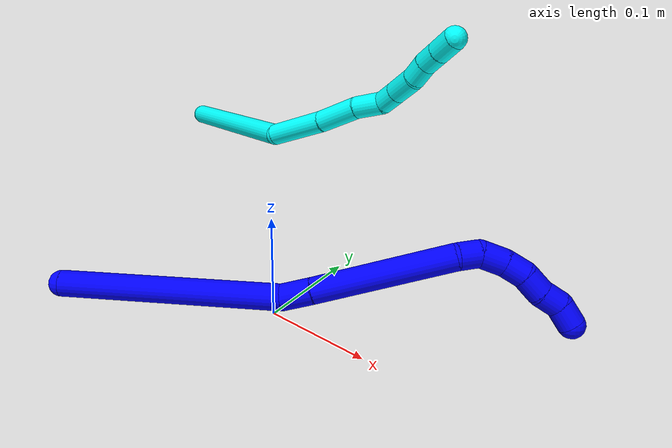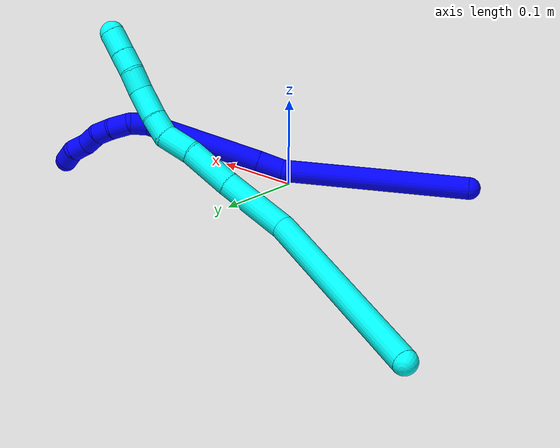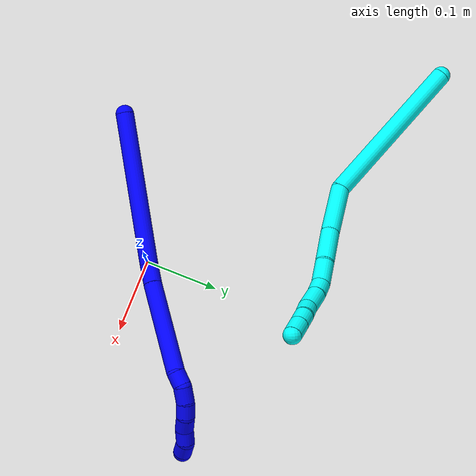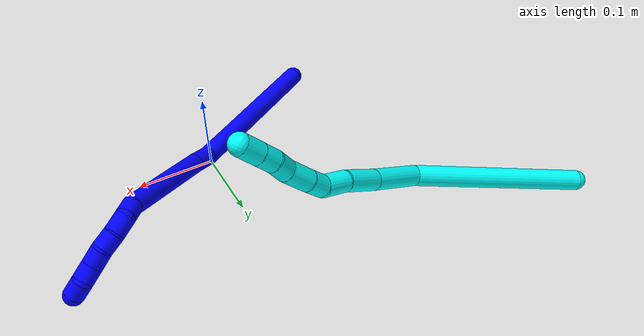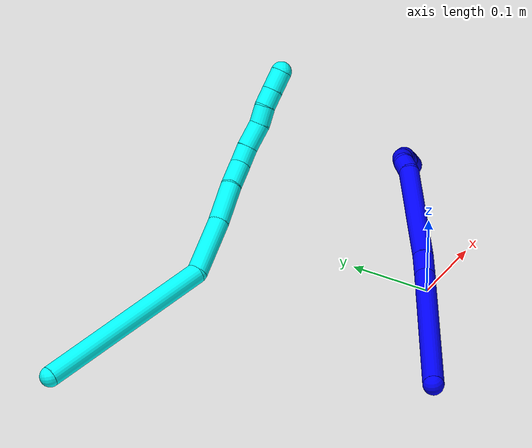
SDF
<sdf version="1.7">
 <world name="default">
  <model name="1">
   <static>0</static>
   <link name="1">
    <collision name="collision-cylinder-e_1_1_4">
     <pose>0.093026 0.051298 0.000636 -1.55841 1.06681 -1.056</pose>
     <geometry><cylinder><radius>0.0125</radius><length>0.212468</length></cylinder></geometry>
     <surface>
      <friction><ode><mu>1.16</mu><mu2>1.16</mu2><slip1>0</slip1><slip2>0</slip2></ode></friction>
      <contact><ode><kp>1e+06</kp><kd>1</kd><max_vel>0</max_vel><min_depth>0.001</min_depth></ode></contact>
     </surface>
    </collision>
    <visual name="visual-cylinder-e_1_1_4">
     <pose>0.093026 0.051298 0.000636 -1.55841 1.06681 -1.056</pose>
     <geometry><cylinder><radius>0.0125</radius><length>0.212468</length></cylinder></geometry>
     <material><ambient>0 0 1 1</ambient></material>
    </visual>
    <collision name="collision-cylinder-e_2_4_5">
     <pose>0.198539 0.109345 0.005745 -0.985389 0.995567 -0.567726</pose>
     <geometry><cylinder><radius>0.0125</radius><length>0.029766</length></cylinder></geometry>
     <surface>
      <friction><ode><mu>1.16</mu><mu2>1.16</mu2><slip1>0</slip1><slip2>0</slip2></ode></friction>
      <contact><ode><kp>1e+06</kp><kd>1</kd><max_vel>0</max_vel><min_depth>0.001</min_depth></ode></contact>
     </surface>
    </collision>
    <visual name="visual-cylinder-e_2_4_5">
     <pose>0.198539 0.109345 0.005745 -0.985389 0.995567 -0.567726</pose>
     <geometry><cylinder><radius>0.0125</radius><length>0.029766</length></cylinder></geometry>
     <material><ambient>0 0 1 1</ambient></material>
    </visual>
    <collision name="collision-cylinder-e_3_5_6">
     <pose>0.264823 0.149482 0.029846 -1.03937 0.946814 -0.570201</pose>
     <geometry><cylinder><radius>0.0125</radius><length>0.132576</length></cylinder></geometry>
     <surface>
      <friction><ode><mu>1.16</mu><mu2>1.16</mu2><slip1>0</slip1><slip2>0</slip2></ode></friction>
      <contact><ode><kp>1e+06</kp><kd>1</kd><max_vel>0</max_vel><min_depth>0.001</min_depth></ode></contact>
     </surface>
    </collision>
    <visual name="visual-cylinder-e_3_5_6">
     <pose>0.264823 0.149482 0.029846 -1.03937 0.946814 -0.570201</pose>
     <geometry><cylinder><radius>0.0125</radius><length>0.132576</length></cylinder></geometry>
     <material><ambient>0 0 1 1</ambient></material>
    </visual>
    <collision name="collision-cylinder-e_4_6_7">
     <pose>0.325707 0.189912 0.050444 -1.43371 0.783941 -0.691554</pose>
     <geometry><cylinder><radius>0.0125</radius><length>0.020074</length></cylinder></geometry>
     <surface>
      <friction><ode><mu>1.16</mu><mu2>1.16</mu2><slip1>0</slip1><slip2>0</slip2></ode></friction>
      <contact><ode><kp>1e+06</kp><kd>1</kd><max_vel>0</max_vel><min_depth>0.001</min_depth></ode></contact>
     </surface>
    </collision>
    <visual name="visual-cylinder-e_4_6_7">
     <pose>0.325707 0.189912 0.050444 -1.43371 0.783941 -0.691554</pose>
     <geometry><cylinder><radius>0.0125</radius><length>0.020074</length></cylinder></geometry>
     <material><ambient>0 0 1 1</ambient></material>
    </visual>
    <collision name="collision-cylinder-e_5_7_8">
     <pose>0.342015 0.203012 0.047442 -2.15122 0.904744 -1.46547</pose>
     <geometry><cylinder><radius>0.0125</radius><length>0.023455</length></cylinder></geometry>
     <surface>
      <friction><ode><mu>1.16</mu><mu2>1.16</mu2><slip1>0</slip1><slip2>0</slip2></ode></friction>
      <contact><ode><kp>1e+06</kp><kd>1</kd><max_vel>0</max_vel><min_depth>0.001</min_depth></ode></contact>
     </surface>
    </collision>
    <visual name="visual-cylinder-e_5_7_8">
     <pose>0.342015 0.203012 0.047442 -2.15122 0.904744 -1.46547</pose>
     <geometry><cylinder><radius>0.0125</radius><length>0.023455</length></cylinder></geometry>
     <material><ambient>0 0 1 1</ambient></material>
    </visual>
    <collision name="collision-cylinder-e_6_8_9">
     <pose>0.359433 0.21263 0.038614 -2.50909 0.937452 -1.99413</pose>
     <geometry><cylinder><radius>0.0125</radius><length>0.02034</length></cylinder></geometry>
     <surface>
      <friction><ode><mu>1.16</mu><mu2>1.16</mu2><slip1>0</slip1><slip2>0</slip2></ode></friction>
      <contact><ode><kp>1e+06</kp><kd>1</kd><max_vel>0</max_vel><min_depth>0.001</min_depth></ode></contact>
     </surface>
    </collision>
    <visual name="visual-cylinder-e_6_8_9">
     <pose>0.359433 0.21263 0.038614 -2.50909 0.937452 -1.99413</pose>
     <geometry><cylinder><radius>0.0125</radius><length>0.02034</length></cylinder></geometry>
     <material><ambient>0 0 1 1</ambient></material>
    </visual>
    <collision name="collision-cylinder-e_7_9_10">
     <pose>0.374568 0.218777 0.026162 -2.81322 0.712842 -2.30424</pose>
     <geometry><cylinder><radius>0.0125</radius><length>0.021217</length></cylinder></geometry>
     <surface>
      <friction><ode><mu>1.16</mu><mu2>1.16</mu2><slip1>0</slip1><slip2>0</slip2></ode></friction>
      <contact><ode><kp>1e+06</kp><kd>1</kd><max_vel>0</max_vel><min_depth>0.001</min_depth></ode></contact>
     </surface>
    </collision>
    <visual name="visual-cylinder-e_7_9_10">
     <pose>0.374568 0.218777 0.026162 -2.81322 0.712842 -2.30424</pose>
     <geometry><cylinder><radius>0.0125</radius><length>0.021217</length></cylinder></geometry>
     <material><ambient>0 0 1 1</ambient></material>
    </visual>
    <collision name="collision-cylinder-e_8_10_11">
     <pose>0.388923 0.225504 0.013283 -2.47703 0.835272 -1.81967</pose>
     <geometry><cylinder><radius>0.0125</radius><length>0.020004</length></cylinder></geometry>
     <surface>
      <friction><ode><mu>1.16</mu><mu2>1.16</mu2><slip1>0</slip1><slip2>0</slip2></ode></friction>
      <contact><ode><kp>1e+06</kp><kd>1</kd><max_vel>0</max_vel><min_depth>0.001</min_depth></ode></contact>
     </surface>
    </collision>
    <visual name="visual-cylinder-e_8_10_11">
     <pose>0.388923 0.225504 0.013283 -2.47703 0.835272 -1.81967</pose>
     <geometry><cylinder><radius>0.0125</radius><length>0.020004</length></cylinder></geometry>
     <material><ambient>0 0 1 1</ambient></material>
    </visual>
    <collision name="collision-cylinder-e_9_11_2">
     <pose>0.402218 0.230643 -9e-05 -3.0186 0.624836 -2.76486</pose>
     <geometry><cylinder><radius>0.0125</radius><length>0.0201</length></cylinder></geometry>
     <surface>
      <friction><ode><mu>1.16</mu><mu2>1.16</mu2><slip1>0</slip1><slip2>0</slip2></ode></friction>
      <contact><ode><kp>1e+06</kp><kd>1</kd><max_vel>0</max_vel><min_depth>0.001</min_depth></ode></contact>
     </surface>
    </collision>
    <visual name="visual-cylinder-e_9_11_2">
     <pose>0.402218 0.230643 -9e-05 -3.0186 0.624836 -2.76486</pose>
     <geometry><cylinder><radius>0.0125</radius><length>0.0201</length></cylinder></geometry>
     <material><ambient>0 0 1 1</ambient></material>
    </visual>
    <collision name="collision-sphere-2">
     <pose>0.408097 0.231642 -0.008179 0 -0 0</pose>
     <geometry><sphere><radius>0.0125</radius></sphere></geometry>
     <surface>
      <friction><ode><mu>1.16</mu><mu2>1.16</mu2><slip1>0</slip1><slip2>0</slip2></ode></friction>
      <contact><ode><kp>1e+06</kp><kd>1</kd><max_vel>0</max_vel><min_depth>0.001</min_depth></ode></contact>
     </surface>
    </collision>
    <visual name="visual-sphere-2">
     <pose>0.408097 0.231642 -0.008179 0 -0 0</pose>
     <geometry><sphere><radius>0.0125</radius></sphere></geometry>
     <material><ambient>0 0 1 1</ambient></material>
    </visual>
    <collision name="collision-sphere-11">
     <pose>0.396339 0.229643 0.008 0 -0 0</pose>
     <geometry><sphere><radius>0.0125</radius></sphere></geometry>
     <surface>
      <friction><ode><mu>1.16</mu><mu2>1.16</mu2><slip1>0</slip1><slip2>0</slip2></ode></friction>
      <contact><ode><kp>1e+06</kp><kd>1</kd><max_vel>0</max_vel><min_depth>0.001</min_depth></ode></contact>
     </surface>
    </collision>
    <visual name="visual-sphere-11">
     <pose>0.396339 0.229643 0.008 0 -0 0</pose>
     <geometry><sphere><radius>0.0125</radius></sphere></geometry>
     <material><ambient>0 0 1 1</ambient></material>
    </visual>
    <collision name="collision-sphere-10">
     <pose>0.381506 0.221365 0.018566 0 -0 0</pose>
     <geometry><sphere><radius>0.0125</radius></sphere></geometry>
     <surface>
      <friction><ode><mu>1.16</mu><mu2>1.16</mu2><slip1>0</slip1><slip2>0</slip2></ode></friction>
      <contact><ode><kp>1e+06</kp><kd>1</kd><max_vel>0</max_vel><min_depth>0.001</min_depth></ode></contact>
     </surface>
    </collision>
    <visual name="visual-sphere-10">
     <pose>0.381506 0.221365 0.018566 0 -0 0</pose>
     <geometry><sphere><radius>0.0125</radius></sphere></geometry>
     <material><ambient>0 0 1 1</ambient></material>
    </visual>
    <collision name="collision-sphere-9">
     <pose>0.36763 0.216188 0.033759 0 -0 0</pose>
     <geometry><sphere><radius>0.0125</radius></sphere></geometry>
     <surface>
      <friction><ode><mu>1.16</mu><mu2>1.16</mu2><slip1>0</slip1><slip2>0</slip2></ode></friction>
      <contact><ode><kp>1e+06</kp><kd>1</kd><max_vel>0</max_vel><min_depth>0.001</min_depth></ode></contact>
     </surface>
    </collision>
    <visual name="visual-sphere-9">
     <pose>0.36763 0.216188 0.033759 0 -0 0</pose>
     <geometry><sphere><radius>0.0125</radius></sphere></geometry>
     <material><ambient>0 0 1 1</ambient></material>
    </visual>
    <collision name="collision-sphere-4">
     <pose>0.186051 0.102597 0.001271 0 -0 0</pose>
     <geometry><sphere><radius>0.0125</radius></sphere></geometry>
     <surface>
      <friction><ode><mu>1.16</mu><mu2>1.16</mu2><slip1>0</slip1><slip2>0</slip2></ode></friction>
      <contact><ode><kp>1e+06</kp><kd>1</kd><max_vel>0</max_vel><min_depth>0.001</min_depth></ode></contact>
     </surface>
    </collision>
    <visual name="visual-sphere-4">
     <pose>0.186051 0.102597 0.001271 0 -0 0</pose>
     <geometry><sphere><radius>0.0125</radius></sphere></geometry>
     <material><ambient>0 0 1 1</ambient></material>
    </visual>
    <collision name="collision-sphere-1">
     <geometry><sphere><radius>0.0125</radius></sphere></geometry>
     <surface>
      <friction><ode><mu>1.16</mu><mu2>1.16</mu2><slip1>0</slip1><slip2>0</slip2></ode></friction>
      <contact><ode><kp>1e+06</kp><kd>1</kd><max_vel>0</max_vel><min_depth>0.001</min_depth></ode></contact>
     </surface>
    </collision>
    <visual name="visual-sphere-1">
     <geometry><sphere><radius>0.0125</radius></sphere></geometry>
     <material><ambient>0 0 1 1</ambient></material>
    </visual>
    <collision name="collision-sphere-8">
     <pose>0.351236 0.209072 0.043468 0 -0 0</pose>
     <geometry><sphere><radius>0.0125</radius></sphere></geometry>
     <surface>
      <friction><ode><mu>1.16</mu><mu2>1.16</mu2><slip1>0</slip1><slip2>0</slip2></ode></friction>
      <contact><ode><kp>1e+06</kp><kd>1</kd><max_vel>0</max_vel><min_depth>0.001</min_depth></ode></contact>
     </surface>
    </collision>
    <visual name="visual-sphere-8">
     <pose>0.351236 0.209072 0.043468 0 -0 0</pose>
     <geometry><sphere><radius>0.0125</radius></sphere></geometry>
     <material><ambient>0 0 1 1</ambient></material>
    </visual>
    <collision name="collision-sphere-5">
     <pose>0.211027 0.116094 0.010219 0 -0 0</pose>
     <geometry><sphere><radius>0.0125</radius></sphere></geometry>
     <surface>
      <friction><ode><mu>1.16</mu><mu2>1.16</mu2><slip1>0</slip1><slip2>0</slip2></ode></friction>
      <contact><ode><kp>1e+06</kp><kd>1</kd><max_vel>0</max_vel><min_depth>0.001</min_depth></ode></contact>
     </surface>
    </collision>
    <visual name="visual-sphere-5">
     <pose>0.211027 0.116094 0.010219 0 -0 0</pose>
     <geometry><sphere><radius>0.0125</radius></sphere></geometry>
     <material><ambient>0 0 1 1</ambient></material>
    </visual>
    <collision name="collision-sphere-6">
     <pose>0.31862 0.182871 0.049473 0 -0 0</pose>
     <geometry><sphere><radius>0.0125</radius></sphere></geometry>
     <surface>
      <friction><ode><mu>1.16</mu><mu2>1.16</mu2><slip1>0</slip1><slip2>0</slip2></ode></friction>
      <contact><ode><kp>1e+06</kp><kd>1</kd><max_vel>0</max_vel><min_depth>0.001</min_depth></ode></contact>
     </surface>
    </collision>
    <visual name="visual-sphere-6">
     <pose>0.31862 0.182871 0.049473 0 -0 0</pose>
     <geometry><sphere><radius>0.0125</radius></sphere></geometry>
     <material><ambient>0 0 1 1</ambient></material>
    </visual>
    <collision name="collision-sphere-7">
     <pose>0.332794 0.196953 0.051416 0 -0 0</pose>
     <geometry><sphere><radius>0.0125</radius></sphere></geometry>
     <surface>
      <friction><ode><mu>1.16</mu><mu2>1.16</mu2><slip1>0</slip1><slip2>0</slip2></ode></friction>
      <contact><ode><kp>1e+06</kp><kd>1</kd><max_vel>0</max_vel><min_depth>0.001</min_depth></ode></contact>
     </surface>
    </collision>
    <visual name="visual-sphere-7">
     <pose>0.332794 0.196953 0.051416 0 -0 0</pose>
     <geometry><sphere><radius>0.0125</radius></sphere></geometry>
     <material><ambient>0 0 1 1</ambient></material>
    </visual>
    <inertial>
     <pose>0.212933 0.121319 0.015985 0 -0 0</pose>
     <mass>0.5</mass>
     <inertia>
      <ixx>-8.6e-05</ixx>
      <ixy>0</ixy>
      <ixz>0</ixz>
      <iyy>0.0004</iyy>
      <iyz>0</iyz>
      <izz>-0.001375</izz>
     </inertia>
    </inertial>
   </link>
   <pose>-0.176869 -0.104028 0.01149 -0.129202 -0.092745 0.042245</pose>
  </model>
  <model name="3">
   <static>0</static>
   <link name="3">
    <collision name="collision-cylinder-e_1_1_4">
     <pose>0.071218 0.020789 -0.082625 -2.8951 0.696247 -2.48371</pose>
     <geometry><cylinder><radius>0.0125</radius><length>0.222091</length></cylinder></geometry>
     <surface>
      <friction><ode><mu>1.16</mu><mu2>1.16</mu2><slip1>0</slip1><slip2>0</slip2></ode></friction>
      <contact><ode><kp>1e+06</kp><kd>1</kd><max_vel>0</max_vel><min_depth>0.001</min_depth></ode></contact>
     </surface>
    </collision>
    <visual name="visual-cylinder-e_1_1_4">
     <pose>0.071218 0.020789 -0.082625 -2.8951 0.696247 -2.48371</pose>
     <geometry><cylinder><radius>0.0125</radius><length>0.222091</length></cylinder></geometry>
     <material><ambient>0.003922 1 0.996078 1</ambient></material>
    </visual>
    <collision name="collision-cylinder-e_2_4_5">
     <pose>0.175692 0.040775 -0.179192 3.08401 1.17322 3.05499</pose>
     <geometry><cylinder><radius>0.0125</radius><length>0.072137</length></cylinder></geometry>
     <surface>
      <friction><ode><mu>1.16</mu><mu2>1.16</mu2><slip1>0</slip1><slip2>0</slip2></ode></friction>
      <contact><ode><kp>1e+06</kp><kd>1</kd><max_vel>0</max_vel><min_depth>0.001</min_depth></ode></contact>
     </surface>
    </collision>
    <visual name="visual-cylinder-e_2_4_5">
     <pose>0.175692 0.040775 -0.179192 3.08401 1.17322 3.05499</pose>
     <geometry><cylinder><radius>0.0125</radius><length>0.072137</length></cylinder></geometry>
     <material><ambient>0.003922 1 0.996078 1</ambient></material>
    </visual>
    <collision name="collision-cylinder-e_3_5_6">
     <pose>0.232126 0.037408 -0.201939 2.85831 1.19405 2.72805</pose>
     <geometry><cylinder><radius>0.0125</radius><length>0.049855</length></cylinder></geometry>
     <surface>
      <friction><ode><mu>1.16</mu><mu2>1.16</mu2><slip1>0</slip1><slip2>0</slip2></ode></friction>
      <contact><ode><kp>1e+06</kp><kd>1</kd><max_vel>0</max_vel><min_depth>0.001</min_depth></ode></contact>
     </surface>
    </collision>
    <visual name="visual-cylinder-e_3_5_6">
     <pose>0.232126 0.037408 -0.201939 2.85831 1.19405 2.72805</pose>
     <geometry><cylinder><radius>0.0125</radius><length>0.049855</length></cylinder></geometry>
     <material><ambient>0.003922 1 0.996078 1</ambient></material>
    </visual>
    <collision name="collision-cylinder-e_4_6_7">
     <pose>0.270798 0.035991 -0.216471 -2.9439 1.21032 -2.85681</pose>
     <geometry><cylinder><radius>0.0125</radius><length>0.033114</length></cylinder></geometry>
     <surface>
      <friction><ode><mu>1.16</mu><mu2>1.16</mu2><slip1>0</slip1><slip2>0</slip2></ode></friction>
      <contact><ode><kp>1e+06</kp><kd>1</kd><max_vel>0</max_vel><min_depth>0.001</min_depth></ode></contact>
     </surface>
    </collision>
    <visual name="visual-cylinder-e_4_6_7">
     <pose>0.270798 0.035991 -0.216471 -2.9439 1.21032 -2.85681</pose>
     <geometry><cylinder><radius>0.0125</radius><length>0.033114</length></cylinder></geometry>
     <material><ambient>0.003922 1 0.996078 1</ambient></material>
    </visual>
    <collision name="collision-cylinder-e_5_7_8">
     <pose>0.295534 0.033264 -0.227748 2.53223 0.938606 2.03138</pose>
     <geometry><cylinder><radius>0.0125</radius><length>0.022913</length></cylinder></geometry>
     <surface>
      <friction><ode><mu>1.16</mu><mu2>1.16</mu2><slip1>0</slip1><slip2>0</slip2></ode></friction>
      <contact><ode><kp>1e+06</kp><kd>1</kd><max_vel>0</max_vel><min_depth>0.001</min_depth></ode></contact>
     </surface>
    </collision>
    <visual name="visual-cylinder-e_5_7_8">
     <pose>0.295534 0.033264 -0.227748 2.53223 0.938606 2.03138</pose>
     <geometry><cylinder><radius>0.0125</radius><length>0.022913</length></cylinder></geometry>
     <material><ambient>0.003922 1 0.996078 1</ambient></material>
    </visual>
    <collision name="collision-cylinder-e_6_8_9">
     <pose>0.316499 0.024297 -0.242313 2.62731 0.847409 2.08588</pose>
     <geometry><cylinder><radius>0.0125</radius><length>0.031279</length></cylinder></geometry>
     <surface>
      <friction><ode><mu>1.16</mu><mu2>1.16</mu2><slip1>0</slip1><slip2>0</slip2></ode></friction>
      <contact><ode><kp>1e+06</kp><kd>1</kd><max_vel>0</max_vel><min_depth>0.001</min_depth></ode></contact>
     </surface>
    </collision>
    <visual name="visual-cylinder-e_6_8_9">
     <pose>0.316499 0.024297 -0.242313 2.62731 0.847409 2.08588</pose>
     <geometry><cylinder><radius>0.0125</radius><length>0.031279</length></cylinder></geometry>
     <material><ambient>0.003922 1 0.996078 1</ambient></material>
    </visual>
    <collision name="collision-cylinder-e_7_9_10">
     <pose>0.336518 0.013346 -0.256182 2.26296 0.828523 1.50434</pose>
     <geometry><cylinder><radius>0.0125</radius><length>0.022517</length></cylinder></geometry>
     <surface>
      <friction><ode><mu>1.16</mu><mu2>1.16</mu2><slip1>0</slip1><slip2>0</slip2></ode></friction>
      <contact><ode><kp>1e+06</kp><kd>1</kd><max_vel>0</max_vel><min_depth>0.001</min_depth></ode></contact>
     </surface>
    </collision>
    <visual name="visual-cylinder-e_7_9_10">
     <pose>0.336518 0.013346 -0.256182 2.26296 0.828523 1.50434</pose>
     <geometry><cylinder><radius>0.0125</radius><length>0.022517</length></cylinder></geometry>
     <material><ambient>0.003922 1 0.996078 1</ambient></material>
    </visual>
    <collision name="collision-cylinder-e_8_10_11">
     <pose>0.352809 0.00367 -0.266694 2.54787 0.864352 1.97041</pose>
     <geometry><cylinder><radius>0.0125</radius><length>0.021018</length></cylinder></geometry>
     <surface>
      <friction><ode><mu>1.16</mu><mu2>1.16</mu2><slip1>0</slip1><slip2>0</slip2></ode></friction>
      <contact><ode><kp>1e+06</kp><kd>1</kd><max_vel>0</max_vel><min_depth>0.001</min_depth></ode></contact>
     </surface>
    </collision>
    <visual name="visual-cylinder-e_8_10_11">
     <pose>0.352809 0.00367 -0.266694 2.54787 0.864352 1.97041</pose>
     <geometry><cylinder><radius>0.0125</radius><length>0.021018</length></cylinder></geometry>
     <material><ambient>0.003922 1 0.996078 1</ambient></material>
    </visual>
    <collision name="collision-cylinder-e_9_11_2">
     <pose>0.370297 -0.004723 -0.279139 2.54857 0.859084 1.96517</pose>
     <geometry><cylinder><radius>0.0125</radius><length>0.025076</length></cylinder></geometry>
     <surface>
      <friction><ode><mu>1.16</mu><mu2>1.16</mu2><slip1>0</slip1><slip2>0</slip2></ode></friction>
      <contact><ode><kp>1e+06</kp><kd>1</kd><max_vel>0</max_vel><min_depth>0.001</min_depth></ode></contact>
     </surface>
    </collision>
    <visual name="visual-cylinder-e_9_11_2">
     <pose>0.370297 -0.004723 -0.279139 2.54857 0.859084 1.96517</pose>
     <geometry><cylinder><radius>0.0125</radius><length>0.025076</length></cylinder></geometry>
     <material><ambient>0.003922 1 0.996078 1</ambient></material>
    </visual>
    <collision name="collision-sphere-2">
     <pose>0.379792 -0.0093 -0.28593 0 -0 0</pose>
     <geometry><sphere><radius>0.0125</radius></sphere></geometry>
     <surface>
      <friction><ode><mu>1.16</mu><mu2>1.16</mu2><slip1>0</slip1><slip2>0</slip2></ode></friction>
      <contact><ode><kp>1e+06</kp><kd>1</kd><max_vel>0</max_vel><min_depth>0.001</min_depth></ode></contact>
     </surface>
    </collision>
    <visual name="visual-sphere-2">
     <pose>0.379792 -0.0093 -0.28593 0 -0 0</pose>
     <geometry><sphere><radius>0.0125</radius></sphere></geometry>
     <material><ambient>0.003922 1 0.996078 1</ambient></material>
    </visual>
    <collision name="collision-sphere-11">
     <pose>0.360803 -0.000146 -0.272348 0 -0 0</pose>
     <geometry><sphere><radius>0.0125</radius></sphere></geometry>
     <surface>
      <friction><ode><mu>1.16</mu><mu2>1.16</mu2><slip1>0</slip1><slip2>0</slip2></ode></friction>
      <contact><ode><kp>1e+06</kp><kd>1</kd><max_vel>0</max_vel><min_depth>0.001</min_depth></ode></contact>
     </surface>
    </collision>
    <visual name="visual-sphere-11">
     <pose>0.360803 -0.000146 -0.272348 0 -0 0</pose>
     <geometry><sphere><radius>0.0125</radius></sphere></geometry>
     <material><ambient>0.003922 1 0.996078 1</ambient></material>
    </visual>
    <collision name="collision-sphere-10">
     <pose>0.344815 0.007487 -0.261039 0 -0 0</pose>
     <geometry><sphere><radius>0.0125</radius></sphere></geometry>
     <surface>
      <friction><ode><mu>1.16</mu><mu2>1.16</mu2><slip1>0</slip1><slip2>0</slip2></ode></friction>
      <contact><ode><kp>1e+06</kp><kd>1</kd><max_vel>0</max_vel><min_depth>0.001</min_depth></ode></contact>
     </surface>
    </collision>
    <visual name="visual-sphere-10">
     <pose>0.344815 0.007487 -0.261039 0 -0 0</pose>
     <geometry><sphere><radius>0.0125</radius></sphere></geometry>
     <material><ambient>0.003922 1 0.996078 1</ambient></material>
    </visual>
    <collision name="collision-sphere-9">
     <pose>0.328221 0.019204 -0.251326 0 -0 0</pose>
     <geometry><sphere><radius>0.0125</radius></sphere></geometry>
     <surface>
      <friction><ode><mu>1.16</mu><mu2>1.16</mu2><slip1>0</slip1><slip2>0</slip2></ode></friction>
      <contact><ode><kp>1e+06</kp><kd>1</kd><max_vel>0</max_vel><min_depth>0.001</min_depth></ode></contact>
     </surface>
    </collision>
    <visual name="visual-sphere-9">
     <pose>0.328221 0.019204 -0.251326 0 -0 0</pose>
     <geometry><sphere><radius>0.0125</radius></sphere></geometry>
     <material><ambient>0.003922 1 0.996078 1</ambient></material>
    </visual>
    <collision name="collision-sphere-4">
     <pose>0.142437 0.041578 -0.16525 0 -0 0</pose>
     <geometry><sphere><radius>0.0125</radius></sphere></geometry>
     <surface>
      <friction><ode><mu>1.16</mu><mu2>1.16</mu2><slip1>0</slip1><slip2>0</slip2></ode></friction>
      <contact><ode><kp>1e+06</kp><kd>1</kd><max_vel>0</max_vel><min_depth>0.001</min_depth></ode></contact>
     </surface>
    </collision>
    <visual name="visual-sphere-4">
     <pose>0.142437 0.041578 -0.16525 0 -0 0</pose>
     <geometry><sphere><radius>0.0125</radius></sphere></geometry>
     <material><ambient>0.003922 1 0.996078 1</ambient></material>
    </visual>
    <collision name="collision-sphere-1">
     <geometry><sphere><radius>0.0125</radius></sphere></geometry>
     <surface>
      <friction><ode><mu>1.16</mu><mu2>1.16</mu2><slip1>0</slip1><slip2>0</slip2></ode></friction>
      <contact><ode><kp>1e+06</kp><kd>1</kd><max_vel>0</max_vel><min_depth>0.001</min_depth></ode></contact>
     </surface>
    </collision>
    <visual name="visual-sphere-1">
     <geometry><sphere><radius>0.0125</radius></sphere></geometry>
     <material><ambient>0.003922 1 0.996078 1</ambient></material>
    </visual>
    <collision name="collision-sphere-8">
     <pose>0.304776 0.029389 -0.2333 0 -0 0</pose>
     <geometry><sphere><radius>0.0125</radius></sphere></geometry>
     <surface>
      <friction><ode><mu>1.16</mu><mu2>1.16</mu2><slip1>0</slip1><slip2>0</slip2></ode></friction>
      <contact><ode><kp>1e+06</kp><kd>1</kd><max_vel>0</max_vel><min_depth>0.001</min_depth></ode></contact>
     </surface>
    </collision>
    <visual name="visual-sphere-8">
     <pose>0.304776 0.029389 -0.2333 0 -0 0</pose>
     <geometry><sphere><radius>0.0125</radius></sphere></geometry>
     <material><ambient>0.003922 1 0.996078 1</ambient></material>
    </visual>
    <collision name="collision-sphere-5">
     <pose>0.208947 0.039971 -0.193134 0 -0 0</pose>
     <geometry><sphere><radius>0.0125</radius></sphere></geometry>
     <surface>
      <friction><ode><mu>1.16</mu><mu2>1.16</mu2><slip1>0</slip1><slip2>0</slip2></ode></friction>
      <contact><ode><kp>1e+06</kp><kd>1</kd><max_vel>0</max_vel><min_depth>0.001</min_depth></ode></contact>
     </surface>
    </collision>
    <visual name="visual-sphere-5">
     <pose>0.208947 0.039971 -0.193134 0 -0 0</pose>
     <geometry><sphere><radius>0.0125</radius></sphere></geometry>
     <material><ambient>0.003922 1 0.996078 1</ambient></material>
    </visual>
    <collision name="collision-sphere-6">
     <pose>0.255305 0.034844 -0.210744 0 -0 0</pose>
     <geometry><sphere><radius>0.0125</radius></sphere></geometry>
     <surface>
      <friction><ode><mu>1.16</mu><mu2>1.16</mu2><slip1>0</slip1><slip2>0</slip2></ode></friction>
      <contact><ode><kp>1e+06</kp><kd>1</kd><max_vel>0</max_vel><min_depth>0.001</min_depth></ode></contact>
     </surface>
    </collision>
    <visual name="visual-sphere-6">
     <pose>0.255305 0.034844 -0.210744 0 -0 0</pose>
     <geometry><sphere><radius>0.0125</radius></sphere></geometry>
     <material><ambient>0.003922 1 0.996078 1</ambient></material>
    </visual>
    <collision name="collision-sphere-7">
     <pose>0.286291 0.037138 -0.222197 0 -0 0</pose>
     <geometry><sphere><radius>0.0125</radius></sphere></geometry>
     <surface>
      <friction><ode><mu>1.16</mu><mu2>1.16</mu2><slip1>0</slip1><slip2>0</slip2></ode></friction>
      <contact><ode><kp>1e+06</kp><kd>1</kd><max_vel>0</max_vel><min_depth>0.001</min_depth></ode></contact>
     </surface>
    </collision>
    <visual name="visual-sphere-7">
     <pose>0.286291 0.037138 -0.222197 0 -0 0</pose>
     <geometry><sphere><radius>0.0125</radius></sphere></geometry>
     <material><ambient>0.003922 1 0.996078 1</ambient></material>
    </visual>
    <inertial>
     <pose>0.179961 0.024793 -0.159367 0 -0 0</pose>
     <mass>0.5</mass>
     <inertia>
      <ixx>-0.000974</ixx>
      <ixy>0</ixy>
      <ixz>0</ixz>
      <iyy>0.00043</iyy>
      <iyz>0</iyz>
      <izz>-0.000835</izz>
     </inertia>
    </inertial>
   </link>
   <pose>-0.386411 0.279474 0.011816 -1.79374 -0.366772 0.573826</pose>
  </model>
 </world>
</sdf>
